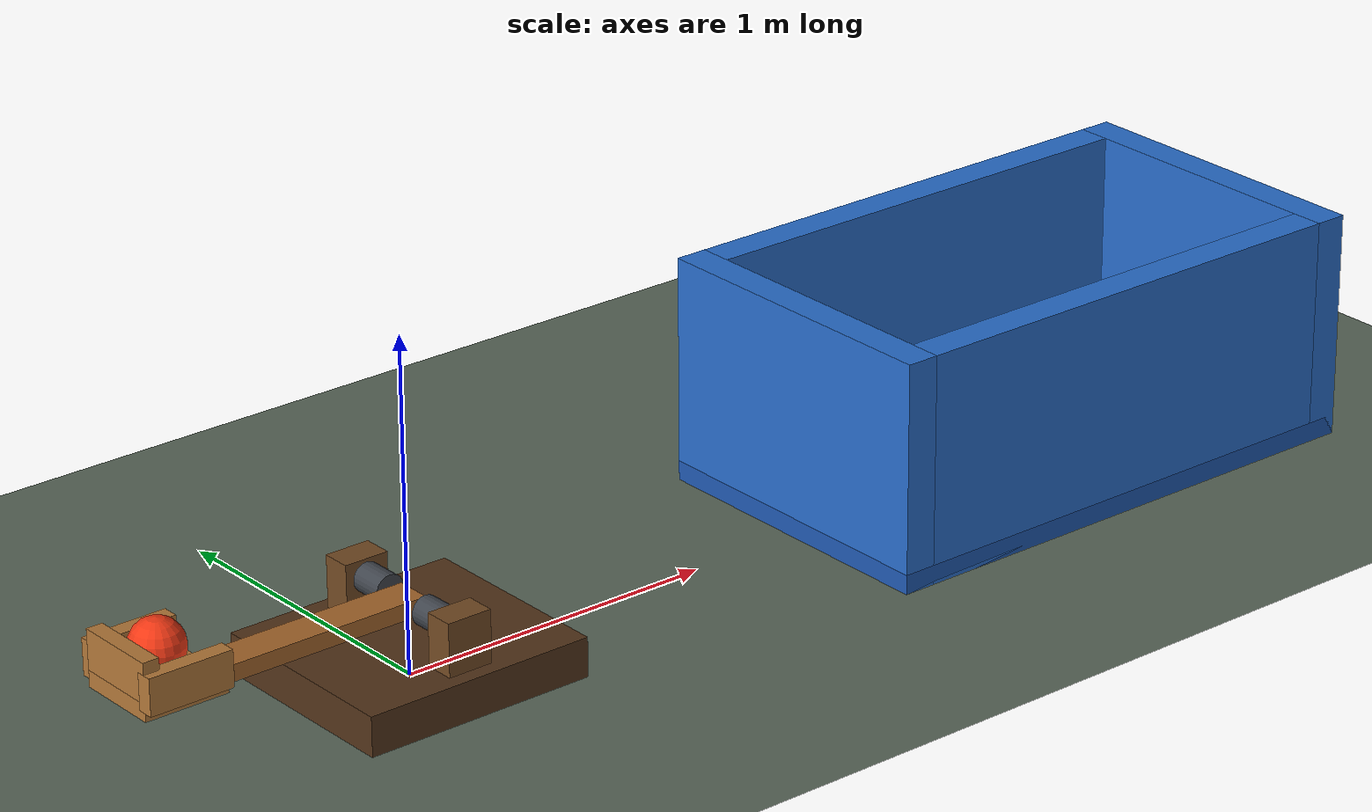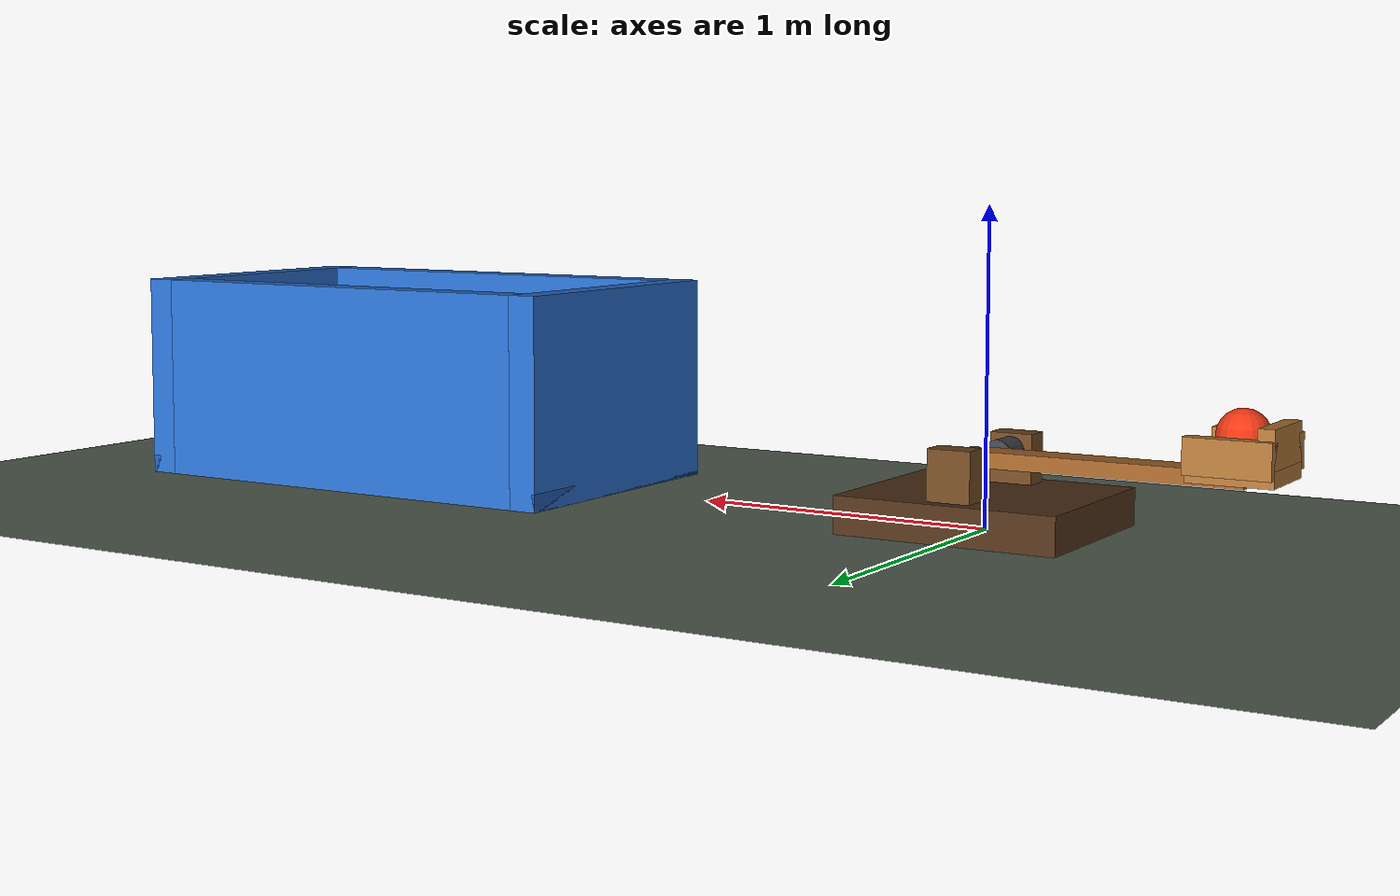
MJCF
<mujoco model="catapult_into_bucket">
  <compiler angle="degree" autolimits="true"/>
  <option timestep="0.002" gravity="0 0 -9.81" integrator="implicitfast" iterations="80"/>
  <size njmax="1000" nconmax="200"/>

  <visual>
    <global azimuth="110" elevation="-20"/>
    <headlight ambient="0.4 0.4 0.4" diffuse="0.7 0.7 0.7"/>
  </visual>

  <worldbody>
    <light name="overhead" pos="0 0 5" dir="0 0 -1"/>
    <camera name="overview" pos="1 -6 3" xyaxes="1 0 0 0 0.4 0.9165"/>
    <geom name="floor" type="plane" size="8 5 0.1" rgba="0.35 0.40 0.35 1" friction="0.9 0.03 0.02" condim="6"/>

    <body name="catapult_frame" pos="0 0 0">
      <geom name="catapult_base" type="box" pos="0 0 0.06" size="0.36 0.32 0.06" rgba="0.32 0.20 0.10 1"/>
      <geom name="catapult_support_left" type="box" pos="0 0.23 0.17" size="0.07 0.045 0.11" rgba="0.45 0.29 0.14 1"/>
      <geom name="catapult_support_right" type="box" pos="0 -0.23 0.17" size="0.07 0.045 0.11" rgba="0.45 0.29 0.14 1"/>
      <geom name="catapult_axle_left" type="cylinder" pos="0 0.16 0.225" quat="0.70710678 0.70710678 0 0" size="0.045 0.08" rgba="0.25 0.27 0.30 1"/>
      <geom name="catapult_axle_right" type="cylinder" pos="0 -0.16 0.225" quat="0.70710678 0.70710678 0 0" size="0.045 0.08" rgba="0.25 0.27 0.30 1"/>

      <body name="catapult_arm" pos="0 0 0.225">
        <joint name="catapult_hinge" type="hinge" axis="0 1 0" range="0 45" damping="0.05" armature="0.01" solreflimit="0.006 1" solimplimit="0.99 0.99 0.001"/>
        <geom name="catapult_beam" type="box" pos="-0.4 0 0" size="0.42 0.055 0.025" mass="0.65" rgba="0.65 0.40 0.17 1"/>
        <geom name="catapult_cup" type="box" pos="-0.8 0 0.02" size="0.13 0.13 0.025" mass="0.15" rgba="0.70 0.47 0.22 1" friction="0.05 0.001 0.0001" condim="3" solref="0.006 1"/>
        <geom name="catapult_cup_back" type="box" pos="-0.905 0 0.105" size="0.025 0.13 0.06" mass="0.07" rgba="0.70 0.47 0.22 1" friction="0.05 0.001 0.0001" condim="3" solref="0.006 1"/>
        <geom name="catapult_cup_left" type="box" pos="-0.8 0.13 0.075" size="0.13 0.025 0.055" mass="0.03" rgba="0.70 0.47 0.22 1" friction="0.05 0.001 0.0001" condim="3" solref="0.006 1"/>
        <geom name="catapult_cup_right" type="box" pos="-0.8 -0.13 0.075" size="0.13 0.025 0.055" mass="0.03" rgba="0.70 0.47 0.22 1" friction="0.05 0.001 0.0001" condim="3" solref="0.006 1"/>
      </body>
    </body>

    <body name="ball" pos="-0.8 0 0.35">
      <freejoint/>
      <geom name="ball" type="sphere" size="0.08" mass="0.12" rgba="0.95 0.22 0.08 1" friction="0.05 0.001 0.0001" condim="3" solref="0.006 1"/>
    </body>

    <!-- The bucket centre is exactly 3 m from the initial ball centre. -->
    <body name="bucket" pos="2.2 0 0.35">
      <geom name="bucket_bottom" type="box" pos="0 0 -0.32" size="0.85 0.5 0.03" rgba="0.12 0.35 0.70 1" friction="0.9 0.04 0.03" condim="6" solref="0.008 1"/>
      <geom name="bucket_near_wall" type="box" pos="-0.80 0 0" size="0.05 0.5 0.35" rgba="0.16 0.43 0.80 1" friction="0.9 0.04 0.03" condim="6" solref="0.008 1"/>
      <geom name="bucket_far_wall" type="box" pos="0.80 0 0" size="0.05 0.5 0.35" rgba="0.16 0.43 0.80 1" friction="0.9 0.04 0.03" condim="6" solref="0.008 1"/>
      <geom name="bucket_left_wall" type="box" pos="0 0.45 0" size="0.75 0.05 0.35" rgba="0.16 0.43 0.80 1" friction="0.9 0.04 0.03" condim="6" solref="0.008 1"/>
      <geom name="bucket_right_wall" type="box" pos="0 -0.45 0" size="0.75 0.05 0.35" rgba="0.16 0.43 0.80 1" friction="0.9 0.04 0.03" condim="6" solref="0.008 1"/>
    </body>
  </worldbody>

  <actuator>
    <velocity name="catapult_drive" joint="catapult_hinge" kv="10" ctrllimited="true" ctrlrange="0 6.4" forcelimited="true" forcerange="-100 100"/>
  </actuator>

  <keyframe>
    <key name="start" qpos="0 -0.8 0 0.35 1 0 0 0" qvel="0 0 0 0 0 0 0" ctrl="6.4"/>
  </keyframe>
</mujoco>
